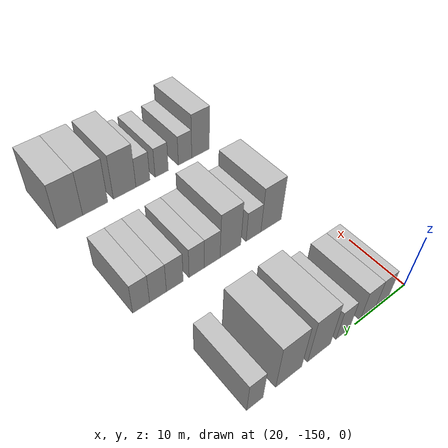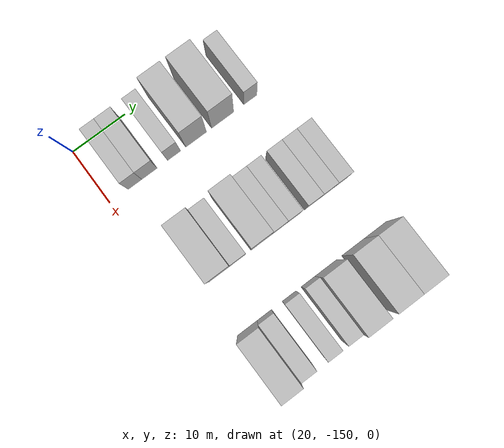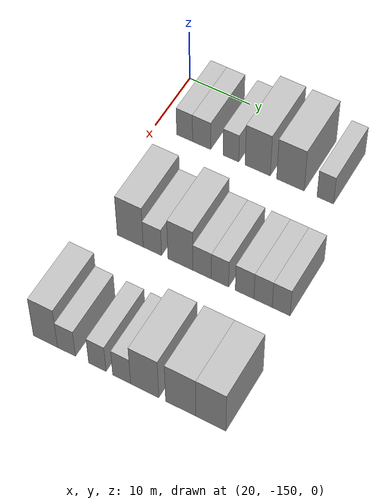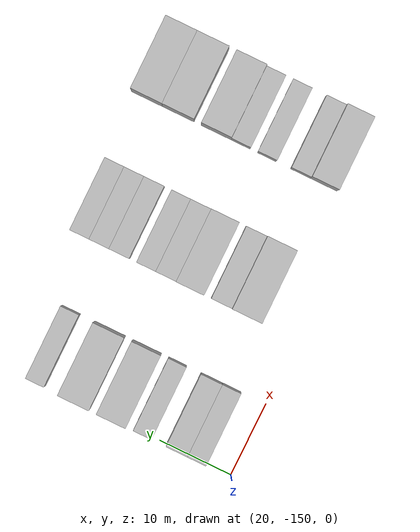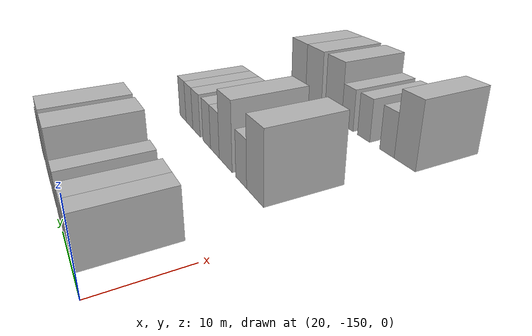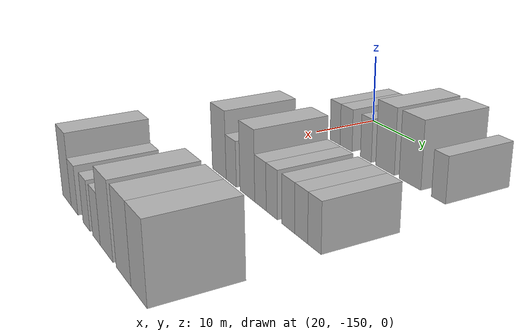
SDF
<sdf version="1.6">
 <world name="default">
  <model name="building_23">
   <static>1</static>
   <pose>25.0000 -145.2001 0 0.000000 0.000000 0.000000</pose>
   <link name="link">
    <pose>0 0 3.00 0 0 0</pose>
    <collision name="collision"><geometry><box><size>10.0000 2.5932 6.0000</size></box></geometry></collision>
    <visual name="visual">
     <cast_shadows>0</cast_shadows>
     <geometry><box><size>10.0000 2.5932 6.0000</size></box></geometry>
     <material>
      <script>
       <uri>model://HANNAS_wall/materials/scripts</uri>
       <uri>model://HANNAS_wall/materials/textures</uri>
       <name>vrc/HANNAS_wall</name>
      </script>
     </material>
    </visual>
   </link>
  </model>
  <model name="building_24">
   <static>1</static>
   <pose>25.0000 -142.4261 0 0.000000 0.000000 0.000000</pose>
   <link name="link">
    <pose>0 0 3.00 0 0 0</pose>
    <collision name="collision"><geometry><box><size>10.0000 2.9548 6.0000</size></box></geometry></collision>
    <visual name="visual">
     <cast_shadows>0</cast_shadows>
     <geometry><box><size>10.0000 2.9548 6.0000</size></box></geometry>
     <material>
      <script>
       <uri>model://HANNAS_wall/materials/scripts</uri>
       <uri>model://HANNAS_wall/materials/textures</uri>
       <name>vrc/HANNAS_wall</name>
      </script>
     </material>
    </visual>
   </link>
  </model>
  <model name="building_25">
   <static>1</static>
   <pose>25.0000 -137.6886 0 0.000000 0.000000 0.000000</pose>
   <link name="link">
    <pose>0 0 3.00 0 0 0</pose>
    <collision name="collision"><geometry><box><size>10.0000 2.5201 6.0000</size></box></geometry></collision>
    <visual name="visual">
     <cast_shadows>0</cast_shadows>
     <geometry><box><size>10.0000 2.5201 6.0000</size></box></geometry>
     <material>
      <script>
       <uri>model://HANNAS_wall/materials/scripts</uri>
       <uri>model://HANNAS_wall/materials/textures</uri>
       <name>vrc/HANNAS_wall</name>
      </script>
     </material>
    </visual>
   </link>
  </model>
  <model name="building_26">
   <static>1</static>
   <pose>25.0000 -133.4198 0 0.000000 0.000000 0.000000</pose>
   <link name="link">
    <pose>0 0 4.50 0 0 0</pose>
    <collision name="collision"><geometry><box><size>10.0000 4.0176 9.0000</size></box></geometry></collision>
    <visual name="visual">
     <cast_shadows>0</cast_shadows>
     <geometry><box><size>10.0000 4.0176 9.0000</size></box></geometry>
     <material>
      <script>
       <uri>model://HANNAS_wall/materials/scripts</uri>
       <uri>model://HANNAS_wall/materials/textures</uri>
       <name>vrc/HANNAS_wall</name>
      </script>
     </material>
    </visual>
   </link>
  </model>
  <model name="building_27">
   <static>1</static>
   <pose>25.0000 -128.2503 0 0.000000 0.000000 0.000000</pose>
   <link name="link">
    <pose>0 0 4.50 0 0 0</pose>
    <collision name="collision"><geometry><box><size>10.0000 4.3213 9.0000</size></box></geometry></collision>
    <visual name="visual">
     <cast_shadows>0</cast_shadows>
     <geometry><box><size>10.0000 4.3213 9.0000</size></box></geometry>
     <material>
      <script>
       <uri>model://HANNAS_wall/materials/scripts</uri>
       <uri>model://HANNAS_wall/materials/textures</uri>
       <name>vrc/HANNAS_wall</name>
      </script>
     </material>
    </visual>
   </link>
  </model>
  <model name="building_28">
   <static>1</static>
   <pose>25.0000 -122.8109 0 0.000000 0.000000 0.000000</pose>
   <link name="link">
    <pose>0 0 3.00 0 0 0</pose>
    <collision name="collision"><geometry><box><size>10.0000 2.5574 6.0000</size></box></geometry></collision>
    <visual name="visual">
     <cast_shadows>0</cast_shadows>
     <geometry><box><size>10.0000 2.5574 6.0000</size></box></geometry>
     <material>
      <script>
       <uri>model://HANNAS_wall/materials/scripts</uri>
       <uri>model://HANNAS_wall/materials/textures</uri>
       <name>vrc/HANNAS_wall</name>
      </script>
     </material>
    </visual>
   </link>
  </model>
  <model name="building_137">
   <static>1</static>
   <pose>44.0000 -142.9048 0 0.000000 0.000000 0.000000</pose>
   <link name="link">
    <pose>0 0 4.50 0 0 0</pose>
    <collision name="collision"><geometry><box><size>10.0000 4.0891 9.0000</size></box></geometry></collision>
    <visual name="visual">
     <cast_shadows>0</cast_shadows>
     <geometry><box><size>10.0000 4.0891 9.0000</size></box></geometry>
     <material>
      <script>
       <uri>model://HANNAS_wall/materials/scripts</uri>
       <uri>model://HANNAS_wall/materials/textures</uri>
       <name>vrc/HANNAS_wall</name>
      </script>
     </material>
    </visual>
   </link>
  </model>
  <model name="building_138">
   <static>1</static>
   <pose>44.0000 -139.4248 0 0.000000 0.000000 0.000000</pose>
   <link name="link">
    <pose>0 0 3.00 0 0 0</pose>
    <collision name="collision"><geometry><box><size>10.0000 2.8710 6.0000</size></box></geometry></collision>
    <visual name="visual">
     <cast_shadows>0</cast_shadows>
     <geometry><box><size>10.0000 2.8710 6.0000</size></box></geometry>
     <material>
      <script>
       <uri>model://HANNAS_wall/materials/scripts</uri>
       <uri>model://HANNAS_wall/materials/textures</uri>
       <name>vrc/HANNAS_wall</name>
      </script>
     </material>
    </visual>
   </link>
  </model>
  <model name="building_139">
   <static>1</static>
   <pose>44.0000 -135.0571 0 0.000000 0.000000 0.000000</pose>
   <link name="link">
    <pose>0 0 4.50 0 0 0</pose>
    <collision name="collision"><geometry><box><size>10.0000 3.8643 9.0000</size></box></geometry></collision>
    <visual name="visual">
     <cast_shadows>0</cast_shadows>
     <geometry><box><size>10.0000 3.8643 9.0000</size></box></geometry>
     <material>
      <script>
       <uri>model://HANNAS_wall/materials/scripts</uri>
       <uri>model://HANNAS_wall/materials/textures</uri>
       <name>vrc/HANNAS_wall</name>
      </script>
     </material>
    </visual>
   </link>
  </model>
  <model name="building_140">
   <static>1</static>
   <pose>44.0000 -131.7102 0 0.000000 0.000000 0.000000</pose>
   <link name="link">
    <pose>0 0 3.00 0 0 0</pose>
    <collision name="collision"><geometry><box><size>10.0000 2.8294 6.0000</size></box></geometry></collision>
    <visual name="visual">
     <cast_shadows>0</cast_shadows>
     <geometry><box><size>10.0000 2.8294 6.0000</size></box></geometry>
     <material>
      <script>
       <uri>model://HANNAS_wall/materials/scripts</uri>
       <uri>model://HANNAS_wall/materials/textures</uri>
       <name>vrc/HANNAS_wall</name>
      </script>
     </material>
    </visual>
   </link>
  </model>
  <model name="building_141">
   <static>1</static>
   <pose>44.0000 -128.9703 0 0.000000 0.000000 0.000000</pose>
   <link name="link">
    <pose>0 0 3.00 0 0 0</pose>
    <collision name="collision"><geometry><box><size>10.0000 2.6505 6.0000</size></box></geometry></collision>
    <visual name="visual">
     <cast_shadows>0</cast_shadows>
     <geometry><box><size>10.0000 2.6505 6.0000</size></box></geometry>
     <material>
      <script>
       <uri>model://HANNAS_wall/materials/scripts</uri>
       <uri>model://HANNAS_wall/materials/textures</uri>
       <name>vrc/HANNAS_wall</name>
      </script>
     </material>
    </visual>
   </link>
  </model>
  <model name="building_142">
   <static>1</static>
   <pose>44.0000 -125.2387 0 0.000000 0.000000 0.000000</pose>
   <link name="link">
    <pose>0 0 3.00 0 0 0</pose>
    <collision name="collision"><geometry><box><size>10.0000 2.8126 6.0000</size></box></geometry></collision>
    <visual name="visual">
     <cast_shadows>0</cast_shadows>
     <geometry><box><size>10.0000 2.8126 6.0000</size></box></geometry>
     <material>
      <script>
       <uri>model://HANNAS_wall/materials/scripts</uri>
       <uri>model://HANNAS_wall/materials/textures</uri>
       <name>vrc/HANNAS_wall</name>
      </script>
     </material>
    </visual>
   </link>
  </model>
  <model name="building_143">
   <static>1</static>
   <pose>44.0000 -122.4614 0 0.000000 0.000000 0.000000</pose>
   <link name="link">
    <pose>0 0 3.00 0 0 0</pose>
    <collision name="collision"><geometry><box><size>10.0000 2.7420 6.0000</size></box></geometry></collision>
    <visual name="visual">
     <cast_shadows>0</cast_shadows>
     <geometry><box><size>10.0000 2.7420 6.0000</size></box></geometry>
     <material>
      <script>
       <uri>model://HANNAS_wall/materials/scripts</uri>
       <uri>model://HANNAS_wall/materials/textures</uri>
       <name>vrc/HANNAS_wall</name>
      </script>
     </material>
    </visual>
   </link>
  </model>
  <model name="building_144">
   <static>1</static>
   <pose>44.0000 -119.7532 0 0.000000 0.000000 0.000000</pose>
   <link name="link">
    <pose>0 0 3.00 0 0 0</pose>
    <collision name="collision"><geometry><box><size>10.0000 2.6745 6.0000</size></box></geometry></collision>
    <visual name="visual">
     <cast_shadows>0</cast_shadows>
     <geometry><box><size>10.0000 2.6745 6.0000</size></box></geometry>
     <material>
      <script>
       <uri>model://HANNAS_wall/materials/scripts</uri>
       <uri>model://HANNAS_wall/materials/textures</uri>
       <name>vrc/HANNAS_wall</name>
      </script>
     </material>
    </visual>
   </link>
  </model>
  <model name="building_243">
   <static>1</static>
   <pose>63.0000 -144.4727 0 0.000000 0.000000 0.000000</pose>
   <link name="link">
    <pose>0 0 4.50 0 0 0</pose>
    <collision name="collision"><geometry><box><size>10.0000 3.7224 9.0000</size></box></geometry></collision>
    <visual name="visual">
     <cast_shadows>0</cast_shadows>
     <geometry><box><size>10.0000 3.7224 9.0000</size></box></geometry>
     <material>
      <script>
       <uri>model://HANNAS_wall/materials/scripts</uri>
       <uri>model://HANNAS_wall/materials/textures</uri>
       <name>vrc/HANNAS_wall</name>
      </script>
     </material>
    </visual>
   </link>
  </model>
  <model name="building_244">
   <static>1</static>
   <pose>63.0000 -141.2388 0 0.000000 0.000000 0.000000</pose>
   <link name="link">
    <pose>0 0 3.00 0 0 0</pose>
    <collision name="collision"><geometry><box><size>10.0000 2.7454 6.0000</size></box></geometry></collision>
    <visual name="visual">
     <cast_shadows>0</cast_shadows>
     <geometry><box><size>10.0000 2.7454 6.0000</size></box></geometry>
     <material>
      <script>
       <uri>model://HANNAS_wall/materials/scripts</uri>
       <uri>model://HANNAS_wall/materials/textures</uri>
       <name>vrc/HANNAS_wall</name>
      </script>
     </material>
    </visual>
   </link>
  </model>
  <model name="building_245">
   <static>1</static>
   <pose>63.0000 -136.5547 0 0.000000 0.000000 0.000000</pose>
   <link name="link">
    <pose>0 0 3.00 0 0 0</pose>
    <collision name="collision"><geometry><box><size>10.0000 2.6227 6.0000</size></box></geometry></collision>
    <visual name="visual">
     <cast_shadows>0</cast_shadows>
     <geometry><box><size>10.0000 2.6227 6.0000</size></box></geometry>
     <material>
      <script>
       <uri>model://HANNAS_wall/materials/scripts</uri>
       <uri>model://HANNAS_wall/materials/textures</uri>
       <name>vrc/HANNAS_wall</name>
      </script>
     </material>
    </visual>
   </link>
  </model>
  <model name="building_246">
   <static>1</static>
   <pose>63.0000 -132.9059 0 0.000000 0.000000 0.000000</pose>
   <link name="link">
    <pose>0 0 3.00 0 0 0</pose>
    <collision name="collision"><geometry><box><size>10.0000 2.6748 6.0000</size></box></geometry></collision>
    <visual name="visual">
     <cast_shadows>0</cast_shadows>
     <geometry><box><size>10.0000 2.6748 6.0000</size></box></geometry>
     <material>
      <script>
       <uri>model://HANNAS_wall/materials/scripts</uri>
       <uri>model://HANNAS_wall/materials/textures</uri>
       <name>vrc/HANNAS_wall</name>
      </script>
     </material>
    </visual>
   </link>
  </model>
  <model name="building_247">
   <static>1</static>
   <pose>63.0000 -129.4775 0 0.000000 0.000000 0.000000</pose>
   <link name="link">
    <pose>0 0 4.50 0 0 0</pose>
    <collision name="collision"><geometry><box><size>10.0000 4.1821 9.0000</size></box></geometry></collision>
    <visual name="visual">
     <cast_shadows>0</cast_shadows>
     <geometry><box><size>10.0000 4.1821 9.0000</size></box></geometry>
     <material>
      <script>
       <uri>model://HANNAS_wall/materials/scripts</uri>
       <uri>model://HANNAS_wall/materials/textures</uri>
       <name>vrc/HANNAS_wall</name>
      </script>
     </material>
    </visual>
   </link>
  </model>
  <model name="building_248">
   <static>1</static>
   <pose>63.0000 -124.1791 0 0.000000 0.000000 0.000000</pose>
   <link name="link">
    <pose>0 0 4.50 0 0 0</pose>
    <collision name="collision"><geometry><box><size>10.0000 4.4146 9.0000</size></box></geometry></collision>
    <visual name="visual">
     <cast_shadows>0</cast_shadows>
     <geometry><box><size>10.0000 4.4146 9.0000</size></box></geometry>
     <material>
      <script>
       <uri>model://HANNAS_wall/materials/scripts</uri>
       <uri>model://HANNAS_wall/materials/textures</uri>
       <name>vrc/HANNAS_wall</name>
      </script>
     </material>
    </visual>
   </link>
  </model>
  <model name="building_249">
   <static>1</static>
   <pose>63.0000 -119.8088 0 0.000000 0.000000 0.000000</pose>
   <link name="link">
    <pose>0 0 4.50 0 0 0</pose>
    <collision name="collision"><geometry><box><size>10.0000 4.3260 9.0000</size></box></geometry></collision>
    <visual name="visual">
     <cast_shadows>0</cast_shadows>
     <geometry><box><size>10.0000 4.3260 9.0000</size></box></geometry>
     <material>
      <script>
       <uri>model://HANNAS_wall/materials/scripts</uri>
       <uri>model://HANNAS_wall/materials/textures</uri>
       <name>vrc/HANNAS_wall</name>
      </script>
     </material>
    </visual>
   </link>
  </model>
 </world>
</sdf>
